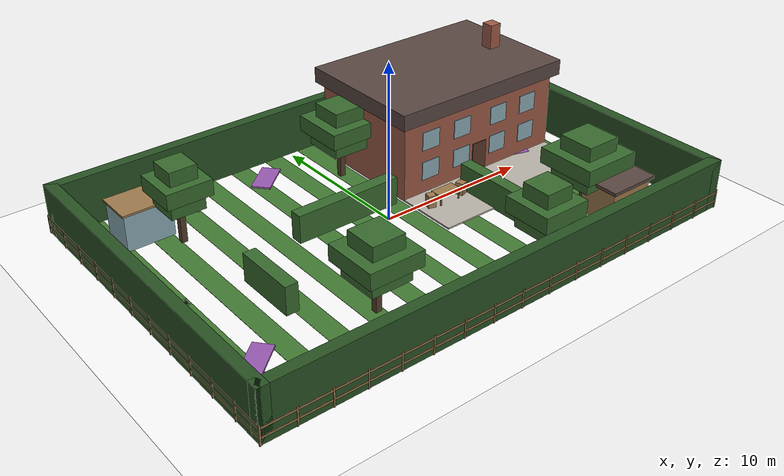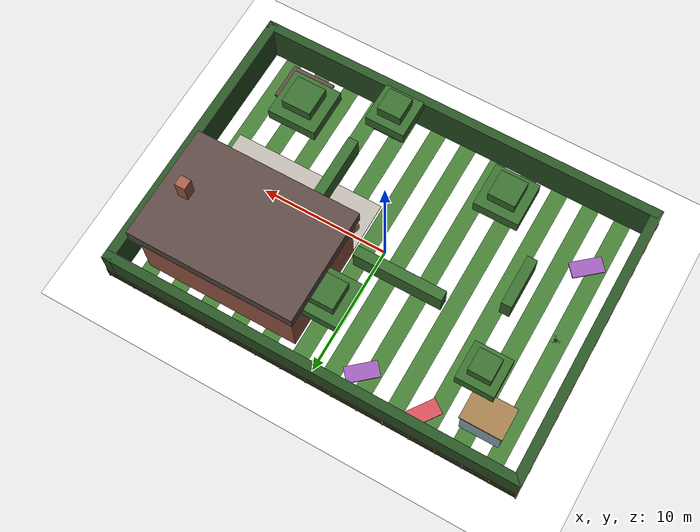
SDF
<sdf version="1.9">
 <world name="garden">
  <physics name="2ms" type="ignore">
   <max_step_size>0.002</max_step_size>
   <real_time_factor>1.0</real_time_factor>
   <dart><collision_detector>bullet</collision_detector></dart>
  </physics>
  <plugin filename="gz-sim-physics-system" name="gz::sim::systems::Physics"/>
  <plugin filename="gz-sim-user-commands-system" name="gz::sim::systems::UserCommands"/>
  <plugin filename="gz-sim-scene-broadcaster-system" name="gz::sim::systems::SceneBroadcaster"/>
  <plugin filename="gz-sim-imu-system" name="gz::sim::systems::Imu"/>
  <plugin filename="gz-sim-navsat-system" name="gz::sim::systems::NavSat"/>
  <plugin filename="gz-sim-sensors-system" name="gz::sim::systems::Sensors">
   <render_engine>ogre2</render_engine>
  </plugin>
  <gravity>0 0 -9.8066</gravity>
  <magnetic_field>2.0554e-05 0.0 4.5e-05</magnetic_field>
  <spherical_coordinates>
   <surface_model>EARTH_WGS84</surface_model>
   <world_frame_orientation>ENU</world_frame_orientation>
   <latitude_deg>49.8397</latitude_deg>
   <longitude_deg>24.0297</longitude_deg>
   <elevation>296.0</elevation>
   <heading_deg>0</heading_deg>
  </spherical_coordinates>
  <scene>
   <ambient>0.55 0.55 0.52 1</ambient>
   <background>0.55 0.68 0.85 1</background>
   <shadows>false</shadows>
   <grid>false</grid>
  </scene>
  <light name="sun" type="directional">
   <pose>0 0 12 0 0 0</pose>
   <direction>-0.4 0.3 -0.9</direction>
   <diffuse>0.9 0.88 0.82 1</diffuse>
   <specular>0.2 0.2 0.2 1</specular>
   <cast_shadows>false</cast_shadows>
  </light>
  <model name="ground_plane">
   <static>true</static>
   <link name="link">
    <collision name="collision">
     <geometry><plane><normal>0 0 1</normal><size>200 200</size></plane></geometry>
     <surface><friction><ode><mu>1.0</mu><mu2>1.0</mu2></ode></friction></surface>
    </collision>
    <visual name="visual">
     <geometry><plane><normal>0 0 1</normal><size>200 200</size></plane></geometry>
     <material>
      <ambient>0.5 0.5 0.5 1</ambient>
      <diffuse>1 1 1 1</diffuse>
      <pbr>
       <metal>
        <albedo_map>model://surfaces/materials/textures/grass.png</albedo_map>
        <metalness>0</metalness>
        <roughness>0.9</roughness>
       </metal>
      </pbr>
     </material>
    </visual>
   </link>
  </model>
  <model name="boundary">
   <static>true</static>
   <link name="link">
    <visual name="hedge_north_v">
     <pose>0 10.65 1.6 0 0 0</pose>
     <geometry><box><size>32 0.7 3.2</size></box></geometry>
     <material><ambient>0.08 0.16 0.07 1</ambient><diffuse>0.16 0.32 0.14 1</diffuse></material>
    </visual>
    <collision name="hedge_north_c">
     <pose>0 10.65 1.6 0 0 0</pose>
     <geometry><box><size>32 0.7 3.2</size></box></geometry>
    </collision>
    <visual name="hedge_south_v">
     <pose>0 -10.65 1.6 0 0 0</pose>
     <geometry><box><size>32 0.7 3.2</size></box></geometry>
     <material><ambient>0.08 0.16 0.07 1</ambient><diffuse>0.16 0.32 0.14 1</diffuse></material>
    </visual>
    <collision name="hedge_south_c">
     <pose>0 -10.65 1.6 0 0 0</pose>
     <geometry><box><size>32 0.7 3.2</size></box></geometry>
    </collision>
    <visual name="hedge_east_v">
     <pose>15.65 0 1.6 0 0 0</pose>
     <geometry><box><size>0.7 22 3.2</size></box></geometry>
     <material><ambient>0.08 0.16 0.07 1</ambient><diffuse>0.16 0.32 0.14 1</diffuse></material>
    </visual>
    <collision name="hedge_east_c">
     <pose>15.65 0 1.6 0 0 0</pose>
     <geometry><box><size>0.7 22 3.2</size></box></geometry>
    </collision>
    <visual name="hedge_west_v">
     <pose>-15.65 0 1.6 0 0 0</pose>
     <geometry><box><size>0.7 22 3.2</size></box></geometry>
     <material><ambient>0.08 0.16 0.07 1</ambient><diffuse>0.16 0.32 0.14 1</diffuse></material>
    </visual>
    <collision name="hedge_west_c">
     <pose>-15.65 0 1.6 0 0 0</pose>
     <geometry><box><size>0.7 22 3.2</size></box></geometry>
    </collision>
    <visual name="post_x0_s_v">
     <pose>-16 -11 0.6 0 0 0</pose>
     <geometry><box><size>0.09 0.09 1.2</size></box></geometry>
     <material><ambient>0.31 0.24 0.15 1</ambient><diffuse>0.62 0.48 0.3 1</diffuse></material>
    </visual>
    <collision name="post_x0_s_c">
     <pose>-16 -11 0.6 0 0 0</pose>
     <geometry><box><size>0.09 0.09 1.2</size></box></geometry>
    </collision>
    <visual name="post_x0_n_v">
     <pose>-16 11 0.6 0 0 0</pose>
     <geometry><box><size>0.09 0.09 1.2</size></box></geometry>
     <material><ambient>0.31 0.24 0.15 1</ambient><diffuse>0.62 0.48 0.3 1</diffuse></material>
    </visual>
    <collision name="post_x0_n_c">
     <pose>-16 11 0.6 0 0 0</pose>
     <geometry><box><size>0.09 0.09 1.2</size></box></geometry>
    </collision>
    <visual name="post_x1_s_v">
     <pose>-14 -11 0.6 0 0 0</pose>
     <geometry><box><size>0.09 0.09 1.2</size></box></geometry>
     <material><ambient>0.31 0.24 0.15 1</ambient><diffuse>0.62 0.48 0.3 1</diffuse></material>
    </visual>
    <collision name="post_x1_s_c">
     <pose>-14 -11 0.6 0 0 0</pose>
     <geometry><box><size>0.09 0.09 1.2</size></box></geometry>
    </collision>
    <visual name="post_x1_n_v">
     <pose>-14 11 0.6 0 0 0</pose>
     <geometry><box><size>0.09 0.09 1.2</size></box></geometry>
     <material><ambient>0.31 0.24 0.15 1</ambient><diffuse>0.62 0.48 0.3 1</diffuse></material>
    </visual>
    <collision name="post_x1_n_c">
     <pose>-14 11 0.6 0 0 0</pose>
     <geometry><box><size>0.09 0.09 1.2</size></box></geometry>
    </collision>
    <visual name="post_x2_s_v">
     <pose>-12 -11 0.6 0 0 0</pose>
     <geometry><box><size>0.09 0.09 1.2</size></box></geometry>
     <material><ambient>0.31 0.24 0.15 1</ambient><diffuse>0.62 0.48 0.3 1</diffuse></material>
    </visual>
    <collision name="post_x2_s_c">
     <pose>-12 -11 0.6 0 0 0</pose>
     <geometry><box><size>0.09 0.09 1.2</size></box></geometry>
    </collision>
    <visual name="post_x2_n_v">
     <pose>-12 11 0.6 0 0 0</pose>
     <geometry><box><size>0.09 0.09 1.2</size></box></geometry>
     <material><ambient>0.31 0.24 0.15 1</ambient><diffuse>0.62 0.48 0.3 1</diffuse></material>
    </visual>
    <collision name="post_x2_n_c">
     <pose>-12 11 0.6 0 0 0</pose>
     <geometry><box><size>0.09 0.09 1.2</size></box></geometry>
    </collision>
    <visual name="post_x3_s_v">
     <pose>-10 -11 0.6 0 0 0</pose>
     <geometry><box><size>0.09 0.09 1.2</size></box></geometry>
     <material><ambient>0.31 0.24 0.15 1</ambient><diffuse>0.62 0.48 0.3 1</diffuse></material>
    </visual>
    <collision name="post_x3_s_c">
     <pose>-10 -11 0.6 0 0 0</pose>
     <geometry><box><size>0.09 0.09 1.2</size></box></geometry>
    </collision>
    <visual name="post_x3_n_v">
     <pose>-10 11 0.6 0 0 0</pose>
     <geometry><box><size>0.09 0.09 1.2</size></box></geometry>
     <material><ambient>0.31 0.24 0.15 1</ambient><diffuse>0.62 0.48 0.3 1</diffuse></material>
    </visual>
    <collision name="post_x3_n_c">
     <pose>-10 11 0.6 0 0 0</pose>
     <geometry><box><size>0.09 0.09 1.2</size></box></geometry>
    </collision>
    <visual name="post_x4_s_v">
     <pose>-8 -11 0.6 0 0 0</pose>
     <geometry><box><size>0.09 0.09 1.2</size></box></geometry>
     <material><ambient>0.31 0.24 0.15 1</ambient><diffuse>0.62 0.48 0.3 1</diffuse></material>
    </visual>
    <collision name="post_x4_s_c">
     <pose>-8 -11 0.6 0 0 0</pose>
     <geometry><box><size>0.09 0.09 1.2</size></box></geometry>
    </collision>
    <visual name="post_x4_n_v">
     <pose>-8 11 0.6 0 0 0</pose>
     <geometry><box><size>0.09 0.09 1.2</size></box></geometry>
     <material><ambient>0.31 0.24 0.15 1</ambient><diffuse>0.62 0.48 0.3 1</diffuse></material>
    </visual>
    <collision name="post_x4_n_c">
     <pose>-8 11 0.6 0 0 0</pose>
     <geometry><box><size>0.09 0.09 1.2</size></box></geometry>
    </collision>
    <visual name="post_x5_s_v">
     <pose>-6 -11 0.6 0 0 0</pose>
     <geometry><box><size>0.09 0.09 1.2</size></box></geometry>
     <material><ambient>0.31 0.24 0.15 1</ambient><diffuse>0.62 0.48 0.3 1</diffuse></material>
    </visual>
    <collision name="post_x5_s_c">
     <pose>-6 -11 0.6 0 0 0</pose>
     <geometry><box><size>0.09 0.09 1.2</size></box></geometry>
    </collision>
    <visual name="post_x5_n_v">
     <pose>-6 11 0.6 0 0 0</pose>
     <geometry><box><size>0.09 0.09 1.2</size></box></geometry>
     <material><ambient>0.31 0.24 0.15 1</ambient><diffuse>0.62 0.48 0.3 1</diffuse></material>
    </visual>
    <collision name="post_x5_n_c">
     <pose>-6 11 0.6 0 0 0</pose>
     <geometry><box><size>0.09 0.09 1.2</size></box></geometry>
    </collision>
    <visual name="post_x6_s_v">
     <pose>-4 -11 0.6 0 0 0</pose>
     <geometry><box><size>0.09 0.09 1.2</size></box></geometry>
     <material><ambient>0.31 0.24 0.15 1</ambient><diffuse>0.62 0.48 0.3 1</diffuse></material>
    </visual>
    <collision name="post_x6_s_c">
     <pose>-4 -11 0.6 0 0 0</pose>
     <geometry><box><size>0.09 0.09 1.2</size></box></geometry>
    </collision>
    <visual name="post_x6_n_v">
     <pose>-4 11 0.6 0 0 0</pose>
     <geometry><box><size>0.09 0.09 1.2</size></box></geometry>
     <material><ambient>0.31 0.24 0.15 1</ambient><diffuse>0.62 0.48 0.3 1</diffuse></material>
    </visual>
    <collision name="post_x6_n_c">
     <pose>-4 11 0.6 0 0 0</pose>
     <geometry><box><size>0.09 0.09 1.2</size></box></geometry>
    </collision>
    <visual name="post_x7_s_v">
     <pose>-2 -11 0.6 0 0 0</pose>
     <geometry><box><size>0.09 0.09 1.2</size></box></geometry>
     <material><ambient>0.31 0.24 0.15 1</ambient><diffuse>0.62 0.48 0.3 1</diffuse></material>
    </visual>
    <collision name="post_x7_s_c">
     <pose>-2 -11 0.6 0 0 0</pose>
     <geometry><box><size>0.09 0.09 1.2</size></box></geometry>
    </collision>
    <visual name="post_x7_n_v">
     <pose>-2 11 0.6 0 0 0</pose>
     <geometry><box><size>0.09 0.09 1.2</size></box></geometry>
     <material><ambient>0.31 0.24 0.15 1</ambient><diffuse>0.62 0.48 0.3 1</diffuse></material>
    </visual>
    <collision name="post_x7_n_c">
     <pose>-2 11 0.6 0 0 0</pose>
     <geometry><box><size>0.09 0.09 1.2</size></box></geometry>
    </collision>
    <visual name="post_x8_s_v">
     <pose>0 -11 0.6 0 0 0</pose>
     <geometry><box><size>0.09 0.09 1.2</size></box></geometry>
     <material><ambient>0.31 0.24 0.15 1</ambient><diffuse>0.62 0.48 0.3 1</diffuse></material>
    </visual>
    <collision name="post_x8_s_c">
     <pose>0 -11 0.6 0 0 0</pose>
     <geometry><box><size>0.09 0.09 1.2</size></box></geometry>
    </collision>
    <visual name="post_x8_n_v">
     <pose>0 11 0.6 0 0 0</pose>
     <geometry><box><size>0.09 0.09 1.2</size></box></geometry>
     <material><ambient>0.31 0.24 0.15 1</ambient><diffuse>0.62 0.48 0.3 1</diffuse></material>
    </visual>
    <collision name="post_x8_n_c">
     <pose>0 11 0.6 0 0 0</pose>
     <geometry><box><size>0.09 0.09 1.2</size></box></geometry>
    </collision>
    <visual name="post_x9_s_v">
     <pose>2 -11 0.6 0 0 0</pose>
     <geometry><box><size>0.09 0.09 1.2</size></box></geometry>
     <material><ambient>0.31 0.24 0.15 1</ambient><diffuse>0.62 0.48 0.3 1</diffuse></material>
    </visual>
    <collision name="post_x9_s_c">
     <pose>2 -11 0.6 0 0 0</pose>
     <geometry><box><size>0.09 0.09 1.2</size></box></geometry>
    </collision>
    <visual name="post_x9_n_v">
     <pose>2 11 0.6 0 0 0</pose>
     <geometry><box><size>0.09 0.09 1.2</size></box></geometry>
     <material><ambient>0.31 0.24 0.15 1</ambient><diffuse>0.62 0.48 0.3 1</diffuse></material>
    </visual>
    <collision name="post_x9_n_c">
     <pose>2 11 0.6 0 0 0</pose>
     <geometry><box><size>0.09 0.09 1.2</size></box></geometry>
    </collision>
    <visual name="post_x10_s_v">
     <pose>4 -11 0.6 0 0 0</pose>
     <geometry><box><size>0.09 0.09 1.2</size></box></geometry>
     <material><ambient>0.31 0.24 0.15 1</ambient><diffuse>0.62 0.48 0.3 1</diffuse></material>
    </visual>
    <collision name="post_x10_s_c">
     <pose>4 -11 0.6 0 0 0</pose>
     <geometry><box><size>0.09 0.09 1.2</size></box></geometry>
    </collision>
    <visual name="post_x10_n_v">
     <pose>4 11 0.6 0 0 0</pose>
     <geometry><box><size>0.09 0.09 1.2</size></box></geometry>
     <material><ambient>0.31 0.24 0.15 1</ambient><diffuse>0.62 0.48 0.3 1</diffuse></material>
    </visual>
    <collision name="post_x10_n_c">
     <pose>4 11 0.6 0 0 0</pose>
     <geometry><box><size>0.09 0.09 1.2</size></box></geometry>
    </collision>
    <visual name="post_x11_s_v">
     <pose>6 -11 0.6 0 0 0</pose>
     <geometry><box><size>0.09 0.09 1.2</size></box></geometry>
     <material><ambient>0.31 0.24 0.15 1</ambient><diffuse>0.62 0.48 0.3 1</diffuse></material>
    </visual>
    <collision name="post_x11_s_c">
     <pose>6 -11 0.6 0 0 0</pose>
     <geometry><box><size>0.09 0.09 1.2</size></box></geometry>
    </collision>
    <visual name="post_x11_n_v">
     <pose>6 11 0.6 0 0 0</pose>
     <geometry><box><size>0.09 0.09 1.2</size></box></geometry>
     <material><ambient>0.31 0.24 0.15 1</ambient><diffuse>0.62 0.48 0.3 1</diffuse></material>
    </visual>
    <collision name="post_x11_n_c">
     <pose>6 11 0.6 0 0 0</pose>
     <geometry><box><size>0.09 0.09 1.2</size></box></geometry>
    </collision>
    <visual name="post_x12_s_v">
     <pose>8 -11 0.6 0 0 0</pose>
     <geometry><box><size>0.09 0.09 1.2</size></box></geometry>
     <material><ambient>0.31 0.24 0.15 1</ambient><diffuse>0.62 0.48 0.3 1</diffuse></material>
    </visual>
    <collision name="post_x12_s_c">
     <pose>8 -11 0.6 0 0 0</pose>
     <geometry><box><size>0.09 0.09 1.2</size></box></geometry>
    </collision>
    <visual name="post_x12_n_v">
     <pose>8 11 0.6 0 0 0</pose>
     <geometry><box><size>0.09 0.09 1.2</size></box></geometry>
     <material><ambient>0.31 0.24 0.15 1</ambient><diffuse>0.62 0.48 0.3 1</diffuse></material>
    </visual>
    <collision name="post_x12_n_c">
     <pose>8 11 0.6 0 0 0</pose>
     <geometry><box><size>0.09 0.09 1.2</size></box></geometry>
    </collision>
    <visual name="post_x13_s_v">
     <pose>10 -11 0.6 0 0 0</pose>
     <geometry><box><size>0.09 0.09 1.2</size></box></geometry>
     <material><ambient>0.31 0.24 0.15 1</ambient><diffuse>0.62 0.48 0.3 1</diffuse></material>
    </visual>
    <collision name="post_x13_s_c">
     <pose>10 -11 0.6 0 0 0</pose>
     <geometry><box><size>0.09 0.09 1.2</size></box></geometry>
    </collision>
    <visual name="post_x13_n_v">
     <pose>10 11 0.6 0 0 0</pose>
     <geometry><box><size>0.09 0.09 1.2</size></box></geometry>
     <material><ambient>0.31 0.24 0.15 1</ambient><diffuse>0.62 0.48 0.3 1</diffuse></material>
    </visual>
    <collision name="post_x13_n_c">
     <pose>10 11 0.6 0 0 0</pose>
     <geometry><box><size>0.09 0.09 1.2</size></box></geometry>
    </collision>
    <visual name="post_x14_s_v">
     <pose>12 -11 0.6 0 0 0</pose>
     <geometry><box><size>0.09 0.09 1.2</size></box></geometry>
     <material><ambient>0.31 0.24 0.15 1</ambient><diffuse>0.62 0.48 0.3 1</diffuse></material>
    </visual>
    <collision name="post_x14_s_c">
     <pose>12 -11 0.6 0 0 0</pose>
     <geometry><box><size>0.09 0.09 1.2</size></box></geometry>
    </collision>
    <visual name="post_x14_n_v">
     <pose>12 11 0.6 0 0 0</pose>
     <geometry><box><size>0.09 0.09 1.2</size></box></geometry>
     <material><ambient>0.31 0.24 0.15 1</ambient><diffuse>0.62 0.48 0.3 1</diffuse></material>
    </visual>
    <collision name="post_x14_n_c">
     <pose>12 11 0.6 0 0 0</pose>
     <geometry><box><size>0.09 0.09 1.2</size></box></geometry>
    </collision>
    <visual name="post_x15_s_v">
     <pose>14 -11 0.6 0 0 0</pose>
     <geometry><box><size>0.09 0.09 1.2</size></box></geometry>
     <material><ambient>0.31 0.24 0.15 1</ambient><diffuse>0.62 0.48 0.3 1</diffuse></material>
    </visual>
    <collision name="post_x15_s_c">
     <pose>14 -11 0.6 0 0 0</pose>
     <geometry><box><size>0.09 0.09 1.2</size></box></geometry>
    </collision>
    <visual name="post_x15_n_v">
     <pose>14 11 0.6 0 0 0</pose>
     <geometry><box><size>0.09 0.09 1.2</size></box></geometry>
     <material><ambient>0.31 0.24 0.15 1</ambient><diffuse>0.62 0.48 0.3 1</diffuse></material>
    </visual>
    <collision name="post_x15_n_c">
     <pose>14 11 0.6 0 0 0</pose>
     <geometry><box><size>0.09 0.09 1.2</size></box></geometry>
    </collision>
    <visual name="post_x16_s_v">
     <pose>16 -11 0.6 0 0 0</pose>
     <geometry><box><size>0.09 0.09 1.2</size></box></geometry>
     <material><ambient>0.31 0.24 0.15 1</ambient><diffuse>0.62 0.48 0.3 1</diffuse></material>
    </visual>
    <collision name="post_x16_s_c">
     <pose>16 -11 0.6 0 0 0</pose>
     <geometry><box><size>0.09 0.09 1.2</size></box></geometry>
    </collision>
    <visual name="post_x16_n_v">
     <pose>16 11 0.6 0 0 0</pose>
     <geometry><box><size>0.09 0.09 1.2</size></box></geometry>
     <material><ambient>0.31 0.24 0.15 1</ambient><diffuse>0.62 0.48 0.3 1</diffuse></material>
    </visual>
    <collision name="post_x16_n_c">
     <pose>16 11 0.6 0 0 0</pose>
     <geometry><box><size>0.09 0.09 1.2</size></box></geometry>
    </collision>
    <visual name="post_y0_w_v">
     <pose>-16 -11 0.6 0 0 0</pose>
     <geometry><box><size>0.09 0.09 1.2</size></box></geometry>
     <material><ambient>0.31 0.24 0.15 1</ambient><diffuse>0.62 0.48 0.3 1</diffuse></material>
    </visual>
    <collision name="post_y0_w_c">
     <pose>-16 -11 0.6 0 0 0</pose>
     <geometry><box><size>0.09 0.09 1.2</size></box></geometry>
    </collision>
    <visual name="post_y0_e_v">
     <pose>16 -11 0.6 0 0 0</pose>
     <geometry><box><size>0.09 0.09 1.2</size></box></geometry>
     <material><ambient>0.31 0.24 0.15 1</ambient><diffuse>0.62 0.48 0.3 1</diffuse></material>
    </visual>
    <collision name="post_y0_e_c">
     <pose>16 -11 0.6 0 0 0</pose>
     <geometry><box><size>0.09 0.09 1.2</size></box></geometry>
    </collision>
    <visual name="post_y1_w_v">
     <pose>-16 -9 0.6 0 0 0</pose>
     <geometry><box><size>0.09 0.09 1.2</size></box></geometry>
     <material><ambient>0.31 0.24 0.15 1</ambient><diffuse>0.62 0.48 0.3 1</diffuse></material>
    </visual>
    <collision name="post_y1_w_c">
     <pose>-16 -9 0.6 0 0 0</pose>
     <geometry><box><size>0.09 0.09 1.2</size></box></geometry>
    </collision>
    <visual name="post_y1_e_v">
     <pose>16 -9 0.6 0 0 0</pose>
     <geometry><box><size>0.09 0.09 1.2</size></box></geometry>
     <material><ambient>0.31 0.24 0.15 1</ambient><diffuse>0.62 0.48 0.3 1</diffuse></material>
    </visual>
    <collision name="post_y1_e_c">
     <pose>16 -9 0.6 0 0 0</pose>
     <geometry><box><size>0.09 0.09 1.2</size></box></geometry>
    </collision>
    <visual name="post_y2_w_v">
     <pose>-16 -7 0.6 0 0 0</pose>
     <geometry><box><size>0.09 0.09 1.2</size></box></geometry>
     <material><ambient>0.31 0.24 0.15 1</ambient><diffuse>0.62 0.48 0.3 1</diffuse></material>
    </visual>
    <collision name="post_y2_w_c">
     <pose>-16 -7 0.6 0 0 0</pose>
     <geometry><box><size>0.09 0.09 1.2</size></box></geometry>
    </collision>
    <visual name="post_y2_e_v">
     <pose>16 -7 0.6 0 0 0</pose>
     <geometry><box><size>0.09 0.09 1.2</size></box></geometry>
     <material><ambient>0.31 0.24 0.15 1</ambient><diffuse>0.62 0.48 0.3 1</diffuse></material>
    </visual>
    <collision name="post_y2_e_c">
     <pose>16 -7 0.6 0 0 0</pose>
     <geometry><box><size>0.09 0.09 1.2</size></box></geometry>
    </collision>
    <visual name="post_y3_w_v">
     <pose>-16 -5 0.6 0 0 0</pose>
     <geometry><box><size>0.09 0.09 1.2</size></box></geometry>
     <material><ambient>0.31 0.24 0.15 1</ambient><diffuse>0.62 0.48 0.3 1</diffuse></material>
    </visual>
    <collision name="post_y3_w_c">
     <pose>-16 -5 0.6 0 0 0</pose>
     <geometry><box><size>0.09 0.09 1.2</size></box></geometry>
    </collision>
    <visual name="post_y3_e_v">
     <pose>16 -5 0.6 0 0 0</pose>
     <geometry><box><size>0.09 0.09 1.2</size></box></geometry>
     <material><ambient>0.31 0.24 0.15 1</ambient><diffuse>0.62 0.48 0.3 1</diffuse></material>
    </visual>
    <collision name="post_y3_e_c">
     <pose>16 -5 0.6 0 0 0</pose>
     <geometry><box><size>0.09 0.09 1.2</size></box></geometry>
    </collision>
    <visual name="post_y4_w_v">
     <pose>-16 -3 0.6 0 0 0</pose>
     <geometry><box><size>0.09 0.09 1.2</size></box></geometry>
     <material><ambient>0.31 0.24 0.15 1</ambient><diffuse>0.62 0.48 0.3 1</diffuse></material>
    </visual>
    <collision name="post_y4_w_c">
     <pose>-16 -3 0.6 0 0 0</pose>
     <geometry><box><size>0.09 0.09 1.2</size></box></geometry>
    </collision>
    <visual name="post_y4_e_v">
     <pose>16 -3 0.6 0 0 0</pose>
     <geometry><box><size>0.09 0.09 1.2</size></box></geometry>
     <material><ambient>0.31 0.24 0.15 1</ambient><diffuse>0.62 0.48 0.3 1</diffuse></material>
    </visual>
    <collision name="post_y4_e_c">
     <pose>16 -3 0.6 0 0 0</pose>
     <geometry><box><size>0.09 0.09 1.2</size></box></geometry>
    </collision>
    <visual name="post_y5_w_v">
     <pose>-16 -1 0.6 0 0 0</pose>
     <geometry><box><size>0.09 0.09 1.2</size></box></geometry>
     <material><ambient>0.31 0.24 0.15 1</ambient><diffuse>0.62 0.48 0.3 1</diffuse></material>
    </visual>
    <collision name="post_y5_w_c">
     <pose>-16 -1 0.6 0 0 0</pose>
     <geometry><box><size>0.09 0.09 1.2</size></box></geometry>
    </collision>
    <visual name="post_y5_e_v">
     <pose>16 -1 0.6 0 0 0</pose>
     <geometry><box><size>0.09 0.09 1.2</size></box></geometry>
     <material><ambient>0.31 0.24 0.15 1</ambient><diffuse>0.62 0.48 0.3 1</diffuse></material>
    </visual>
    <collision name="post_y5_e_c">
     <pose>16 -1 0.6 0 0 0</pose>
     <geometry><box><size>0.09 0.09 1.2</size></box></geometry>
    </collision>
    <visual name="post_y6_w_v">
     <pose>-16 1 0.6 0 0 0</pose>
     <geometry><box><size>0.09 0.09 1.2</size></box></geometry>
     <material><ambient>0.31 0.24 0.15 1</ambient><diffuse>0.62 0.48 0.3 1</diffuse></material>
    </visual>
    <collision name="post_y6_w_c">
     <pose>-16 1 0.6 0 0 0</pose>
     <geometry><box><size>0.09 0.09 1.2</size></box></geometry>
    </collision>
    <visual name="post_y6_e_v">
     <pose>16 1 0.6 0 0 0</pose>
     <geometry><box><size>0.09 0.09 1.2</size></box></geometry>
     <material><ambient>0.31 0.24 0.15 1</ambient><diffuse>0.62 0.48 0.3 1</diffuse></material>
    </visual>
    <collision name="post_y6_e_c">
     <pose>16 1 0.6 0 0 0</pose>
     <geometry><box><size>0.09 0.09 1.2</size></box></geometry>
    </collision>
    <visual name="post_y7_w_v">
     <pose>-16 3 0.6 0 0 0</pose>
     <geometry><box><size>0.09 0.09 1.2</size></box></geometry>
     <material><ambient>0.31 0.24 0.15 1</ambient><diffuse>0.62 0.48 0.3 1</diffuse></material>
    </visual>
    <collision name="post_y7_w_c">
     <pose>-16 3 0.6 0 0 0</pose>
     <geometry><box><size>0.09 0.09 1.2</size></box></geometry>
    </collision>
    <visual name="post_y7_e_v">
     <pose>16 3 0.6 0 0 0</pose>
     <geometry><box><size>0.09 0.09 1.2</size></box></geometry>
     <material><ambient>0.31 0.24 0.15 1</ambient><diffuse>0.62 0.48 0.3 1</diffuse></material>
    </visual>
    <collision name="post_y7_e_c">
     <pose>16 3 0.6 0 0 0</pose>
     <geometry><box><size>0.09 0.09 1.2</size></box></geometry>
    </collision>
    <visual name="post_y8_w_v">
     <pose>-16 5 0.6 0 0 0</pose>
     <geometry><box><size>0.09 0.09 1.2</size></box></geometry>
     <material><ambient>0.31 0.24 0.15 1</ambient><diffuse>0.62 0.48 0.3 1</diffuse></material>
    </visual>
    <collision name="post_y8_w_c">
     <pose>-16 5 0.6 0 0 0</pose>
     <geometry><box><size>0.09 0.09 1.2</size></box></geometry>
    </collision>
    <visual name="post_y8_e_v">
     <pose>16 5 0.6 0 0 0</pose>
     <geometry><box><size>0.09 0.09 1.2</size></box></geometry>
     <material><ambient>0.31 0.24 0.15 1</ambient><diffuse>0.62 0.48 0.3 1</diffuse></material>
    </visual>
    <collision name="post_y8_e_c">
     <pose>16 5 0.6 0 0 0</pose>
     <geometry><box><size>0.09 0.09 1.2</size></box></geometry>
    </collision>
    <visual name="post_y9_w_v">
     <pose>-16 7 0.6 0 0 0</pose>
     <geometry><box><size>0.09 0.09 1.2</size></box></geometry>
     <material><ambient>0.31 0.24 0.15 1</ambient><diffuse>0.62 0.48 0.3 1</diffuse></material>
    </visual>
    <collision name="post_y9_w_c">
     <pose>-16 7 0.6 0 0 0</pose>
     <geometry><box><size>0.09 0.09 1.2</size></box></geometry>
    </collision>
    <visual name="post_y9_e_v">
     <pose>16 7 0.6 0 0 0</pose>
     <geometry><box><size>0.09 0.09 1.2</size></box></geometry>
     <material><ambient>0.31 0.24 0.15 1</ambient><diffuse>0.62 0.48 0.3 1</diffuse></material>
    </visual>
    <collision name="post_y9_e_c">
     <pose>16 7 0.6 0 0 0</pose>
     <geometry><box><size>0.09 0.09 1.2</size></box></geometry>
    </collision>
    <visual name="post_y10_w_v">
     <pose>-16 9 0.6 0 0 0</pose>
     <geometry><box><size>0.09 0.09 1.2</size></box></geometry>
     <material><ambient>0.31 0.24 0.15 1</ambient><diffuse>0.62 0.48 0.3 1</diffuse></material>
    </visual>
    <collision name="post_y10_w_c">
     <pose>-16 9 0.6 0 0 0</pose>
     <geometry><box><size>0.09 0.09 1.2</size></box></geometry>
    </collision>
    <visual name="post_y10_e_v">
     <pose>16 9 0.6 0 0 0</pose>
     <geometry><box><size>0.09 0.09 1.2</size></box></geometry>
     <material><ambient>0.31 0.24 0.15 1</ambient><diffuse>0.62 0.48 0.3 1</diffuse></material>
    </visual>
    <collision name="post_y10_e_c">
     <pose>16 9 0.6 0 0 0</pose>
     <geometry><box><size>0.09 0.09 1.2</size></box></geometry>
    </collision>
    <visual name="post_y11_w_v">
     <pose>-16 11 0.6 0 0 0</pose>
     <geometry><box><size>0.09 0.09 1.2</size></box></geometry>
     <material><ambient>0.31 0.24 0.15 1</ambient><diffuse>0.62 0.48 0.3 1</diffuse></material>
    </visual>
    <collision name="post_y11_w_c">
     <pose>-16 11 0.6 0 0 0</pose>
     <geometry><box><size>0.09 0.09 1.2</size></box></geometry>
    </collision>
    <visual name="post_y11_e_v">
     <pose>16 11 0.6 0 0 0</pose>
     <geometry><box><size>0.09 0.09 1.2</size></box></geometry>
     <material><ambient>0.31 0.24 0.15 1</ambient><diffuse>0.62 0.48 0.3 1</diffuse></material>
    </visual>
    <collision name="post_y11_e_c">
     <pose>16 11 0.6 0 0 0</pose>
     <geometry><box><size>0.09 0.09 1.2</size></box></geometry>
    </collision>
    <visual name="rail_x0_s_v">
     <pose>0 -11 0.45 0 0 0</pose>
     <geometry><box><size>32 0.06 0.12</size></box></geometry>
     <material><ambient>0.31 0.24 0.15 1</ambient><diffuse>0.62 0.48 0.3 1</diffuse></material>
    </visual>
    <visual name="rail_x0_n_v">
     <pose>0 11 0.45 0 0 0</pose>
     <geometry><box><size>32 0.06 0.12</size></box></geometry>
     <material><ambient>0.31 0.24 0.15 1</ambient><diffuse>0.62 0.48 0.3 1</diffuse></material>
    </visual>
    <visual name="rail_y0_w_v">
     <pose>-16 0 0.45 0 0 0</pose>
     <geometry><box><size>0.06 22 0.12</size></box></geometry>
     <material><ambient>0.31 0.24 0.15 1</ambient><diffuse>0.62 0.48 0.3 1</diffuse></material>
    </visual>
    <visual name="rail_y0_e_v">
     <pose>16 0 0.45 0 0 0</pose>
     <geometry><box><size>0.06 22 0.12</size></box></geometry>
     <material><ambient>0.31 0.24 0.15 1</ambient><diffuse>0.62 0.48 0.3 1</diffuse></material>
    </visual>
    <visual name="rail_x1_s_v">
     <pose>0 -11 1 0 0 0</pose>
     <geometry><box><size>32 0.06 0.12</size></box></geometry>
     <material><ambient>0.31 0.24 0.15 1</ambient><diffuse>0.62 0.48 0.3 1</diffuse></material>
    </visual>
    <visual name="rail_x1_n_v">
     <pose>0 11 1 0 0 0</pose>
     <geometry><box><size>32 0.06 0.12</size></box></geometry>
     <material><ambient>0.31 0.24 0.15 1</ambient><diffuse>0.62 0.48 0.3 1</diffuse></material>
    </visual>
    <visual name="rail_y1_w_v">
     <pose>-16 0 1 0 0 0</pose>
     <geometry><box><size>0.06 22 0.12</size></box></geometry>
     <material><ambient>0.31 0.24 0.15 1</ambient><diffuse>0.62 0.48 0.3 1</diffuse></material>
    </visual>
    <visual name="rail_y1_e_v">
     <pose>16 0 1 0 0 0</pose>
     <geometry><box><size>0.06 22 0.12</size></box></geometry>
     <material><ambient>0.31 0.24 0.15 1</ambient><diffuse>0.62 0.48 0.3 1</diffuse></material>
    </visual>
   </link>
  </model>
  <model name="house">
   <static>true</static>
   <pose>8 5 0 0 0 0</pose>
   <link name="link">
    <visual name="walls_v">
     <pose>0 0 2.5 0 0 0</pose>
     <geometry><box><size>12 8 5</size></box></geometry>
     <material><ambient>0.31 0.18 0.14 1</ambient><diffuse>0.62 0.36 0.28 1</diffuse></material>
    </visual>
    <collision name="walls_c">
     <pose>0 0 2.5 0 0 0</pose>
     <geometry><box><size>12 8 5</size></box></geometry>
    </collision>
    <visual name="roof_v">
     <pose>0 0 5.5 0 0 0</pose>
     <geometry><box><size>12.8 8.8 1</size></box></geometry>
     <material><ambient>0.175 0.14 0.13 1</ambient><diffuse>0.35 0.28 0.26 1</diffuse></material>
    </visual>
    <collision name="roof_c">
     <pose>0 0 5.5 0 0 0</pose>
     <geometry><box><size>12.8 8.8 1</size></box></geometry>
    </collision>
    <visual name="chimney_v">
     <pose>4.5 0 6.8 0 0 0</pose>
     <geometry><box><size>0.8 0.8 1.6</size></box></geometry>
     <material><ambient>0.31 0.18 0.14 1</ambient><diffuse>0.62 0.36 0.28 1</diffuse></material>
    </visual>
    <collision name="chimney_c">
     <pose>4.5 0 6.8 0 0 0</pose>
     <geometry><box><size>0.8 0.8 1.6</size></box></geometry>
    </collision>
    <visual name="window_0_0_v">
     <pose>-4 -4.02 1.6 0 0 0</pose>
     <geometry><box><size>1.3 0.06 1.2</size></box></geometry>
     <material><ambient>0.275 0.34 0.36 1</ambient><diffuse>0.55 0.68 0.72 1</diffuse></material>
    </visual>
    <visual name="window_0_1_v">
     <pose>-4 -4.02 3.6 0 0 0</pose>
     <geometry><box><size>1.3 0.06 1.2</size></box></geometry>
     <material><ambient>0.275 0.34 0.36 1</ambient><diffuse>0.55 0.68 0.72 1</diffuse></material>
    </visual>
    <visual name="window_1_0_v">
     <pose>-1.5 -4.02 1.6 0 0 0</pose>
     <geometry><box><size>1.3 0.06 1.2</size></box></geometry>
     <material><ambient>0.275 0.34 0.36 1</ambient><diffuse>0.55 0.68 0.72 1</diffuse></material>
    </visual>
    <visual name="window_1_1_v">
     <pose>-1.5 -4.02 3.6 0 0 0</pose>
     <geometry><box><size>1.3 0.06 1.2</size></box></geometry>
     <material><ambient>0.275 0.34 0.36 1</ambient><diffuse>0.55 0.68 0.72 1</diffuse></material>
    </visual>
    <visual name="window_2_0_v">
     <pose>1.5 -4.02 1.6 0 0 0</pose>
     <geometry><box><size>1.3 0.06 1.2</size></box></geometry>
     <material><ambient>0.275 0.34 0.36 1</ambient><diffuse>0.55 0.68 0.72 1</diffuse></material>
    </visual>
    <visual name="window_2_1_v">
     <pose>1.5 -4.02 3.6 0 0 0</pose>
     <geometry><box><size>1.3 0.06 1.2</size></box></geometry>
     <material><ambient>0.275 0.34 0.36 1</ambient><diffuse>0.55 0.68 0.72 1</diffuse></material>
    </visual>
    <visual name="window_3_0_v">
     <pose>4 -4.02 1.6 0 0 0</pose>
     <geometry><box><size>1.3 0.06 1.2</size></box></geometry>
     <material><ambient>0.275 0.34 0.36 1</ambient><diffuse>0.55 0.68 0.72 1</diffuse></material>
    </visual>
    <visual name="window_3_1_v">
     <pose>4 -4.02 3.6 0 0 0</pose>
     <geometry><box><size>1.3 0.06 1.2</size></box></geometry>
     <material><ambient>0.275 0.34 0.36 1</ambient><diffuse>0.55 0.68 0.72 1</diffuse></material>
    </visual>
    <visual name="door_v">
     <pose>0 -4.02 1.05 0 0 0</pose>
     <geometry><box><size>1.1 0.06 2.1</size></box></geometry>
     <material><ambient>0.175 0.11 0.08 1</ambient><diffuse>0.35 0.22 0.16 1</diffuse></material>
    </visual>
    <visual name="terrace_v">
     <pose>0 -6 0.05 0 0 0</pose>
     <geometry><box><size>12 4 0.1</size></box></geometry>
     <material><ambient>0.36 0.35 0.33 1</ambient><diffuse>0.72 0.7 0.66 1</diffuse></material>
    </visual>
    <collision name="terrace_c">
     <pose>0 -6 0.05 0 0 0</pose>
     <geometry><box><size>12 4 0.1</size></box></geometry>
    </collision>
   </link>
  </model>
  <model name="tree_0">
   <static>true</static>
   <pose>-6 -6.5 0 0 0 0</pose>
   <link name="link">
    <visual name="trunk_v">
     <pose>0 0 1.071 0 0 0</pose>
     <geometry><box><size>0.36 0.36 2.143</size></box></geometry>
     <material><ambient>0.16 0.12 0.08 1</ambient><diffuse>0.32 0.24 0.16 1</diffuse></material>
    </visual>
    <collision name="trunk_c">
     <pose>0 0 1.071 0 0 0</pose>
     <geometry><box><size>0.36 0.36 2.143</size></box></geometry>
    </collision>
    <visual name="canopy_0_v">
     <pose>0 0 2.543 0 0 0</pose>
     <geometry><box><size>2.59 2.59 1</size></box></geometry>
     <material><ambient>0.11 0.21 0.09 1</ambient><diffuse>0.22 0.42 0.18 1</diffuse></material>
    </visual>
    <collision name="canopy_0_c">
     <pose>0 0 2.543 0 0 0</pose>
     <geometry><box><size>2.59 2.59 1</size></box></geometry>
    </collision>
    <visual name="canopy_1_v">
     <pose>0 0 3.443 0 0 0</pose>
     <geometry><box><size>3.453 3.453 1</size></box></geometry>
     <material><ambient>0.11 0.21 0.09 1</ambient><diffuse>0.22 0.42 0.18 1</diffuse></material>
    </visual>
    <collision name="canopy_1_c">
     <pose>0 0 3.443 0 0 0</pose>
     <geometry><box><size>3.453 3.453 1</size></box></geometry>
    </collision>
    <visual name="canopy_2_v">
     <pose>0 0 4.343 0 0 0</pose>
     <geometry><box><size>2.072 2.072 1</size></box></geometry>
     <material><ambient>0.11 0.21 0.09 1</ambient><diffuse>0.22 0.42 0.18 1</diffuse></material>
    </visual>
    <collision name="canopy_2_c">
     <pose>0 0 4.343 0 0 0</pose>
     <geometry><box><size>2.072 2.072 1</size></box></geometry>
    </collision>
   </link>
  </model>
  <model name="tree_1">
   <static>true</static>
   <pose>1 6 0 0 0 0</pose>
   <link name="link">
    <visual name="trunk_v">
     <pose>0 0 1.111 0 0 0</pose>
     <geometry><box><size>0.36 0.36 2.222</size></box></geometry>
     <material><ambient>0.16 0.12 0.08 1</ambient><diffuse>0.32 0.24 0.16 1</diffuse></material>
    </visual>
    <collision name="trunk_c">
     <pose>0 0 1.111 0 0 0</pose>
     <geometry><box><size>0.36 0.36 2.222</size></box></geometry>
    </collision>
    <visual name="canopy_0_v">
     <pose>0 0 2.622 0 0 0</pose>
     <geometry><box><size>2.644 2.644 1</size></box></geometry>
     <material><ambient>0.11 0.21 0.09 1</ambient><diffuse>0.22 0.42 0.18 1</diffuse></material>
    </visual>
    <collision name="canopy_0_c">
     <pose>0 0 2.622 0 0 0</pose>
     <geometry><box><size>2.644 2.644 1</size></box></geometry>
    </collision>
    <visual name="canopy_1_v">
     <pose>0 0 3.522 0 0 0</pose>
     <geometry><box><size>3.525 3.525 1</size></box></geometry>
     <material><ambient>0.11 0.21 0.09 1</ambient><diffuse>0.22 0.42 0.18 1</diffuse></material>
    </visual>
    <collision name="canopy_1_c">
     <pose>0 0 3.522 0 0 0</pose>
     <geometry><box><size>3.525 3.525 1</size></box></geometry>
    </collision>
    <visual name="canopy_2_v">
     <pose>0 0 4.422 0 0 0</pose>
     <geometry><box><size>2.115 2.115 1</size></box></geometry>
     <material><ambient>0.11 0.21 0.09 1</ambient><diffuse>0.22 0.42 0.18 1</diffuse></material>
    </visual>
    <collision name="canopy_2_c">
     <pose>0 0 4.422 0 0 0</pose>
     <geometry><box><size>2.115 2.115 1</size></box></geometry>
    </collision>
   </link>
  </model>
  <model name="tree_2">
   <static>true</static>
   <pose>-10.5 5.5 0 0 0 0</pose>
   <link name="link">
    <visual name="trunk_v">
     <pose>0 0 1.188 0 0 0</pose>
     <geometry><box><size>0.36 0.36 2.375</size></box></geometry>
     <material><ambient>0.16 0.12 0.08 1</ambient><diffuse>0.32 0.24 0.16 1</diffuse></material>
    </visual>
    <collision name="trunk_c">
     <pose>0 0 1.188 0 0 0</pose>
     <geometry><box><size>0.36 0.36 2.375</size></box></geometry>
    </collision>
    <visual name="canopy_0_v">
     <pose>0 0 2.775 0 0 0</pose>
     <geometry><box><size>2.159 2.159 1</size></box></geometry>
     <material><ambient>0.11 0.21 0.09 1</ambient><diffuse>0.22 0.42 0.18 1</diffuse></material>
    </visual>
    <collision name="canopy_0_c">
     <pose>0 0 2.775 0 0 0</pose>
     <geometry><box><size>2.159 2.159 1</size></box></geometry>
    </collision>
    <visual name="canopy_1_v">
     <pose>0 0 3.675 0 0 0</pose>
     <geometry><box><size>2.879 2.879 1</size></box></geometry>
     <material><ambient>0.11 0.21 0.09 1</ambient><diffuse>0.22 0.42 0.18 1</diffuse></material>
    </visual>
    <collision name="canopy_1_c">
     <pose>0 0 3.675 0 0 0</pose>
     <geometry><box><size>2.879 2.879 1</size></box></geometry>
    </collision>
    <visual name="canopy_2_v">
     <pose>0 0 4.575 0 0 0</pose>
     <geometry><box><size>1.727 1.727 1</size></box></geometry>
     <material><ambient>0.11 0.21 0.09 1</ambient><diffuse>0.22 0.42 0.18 1</diffuse></material>
    </visual>
    <collision name="canopy_2_c">
     <pose>0 0 4.575 0 0 0</pose>
     <geometry><box><size>1.727 1.727 1</size></box></geometry>
    </collision>
   </link>
  </model>
  <model name="tree_3">
   <static>true</static>
   <pose>10 -6 0 0 0 0</pose>
   <link name="link">
    <visual name="trunk_v">
     <pose>0 0 1.004 0 0 0</pose>
     <geometry><box><size>0.36 0.36 2.008</size></box></geometry>
     <material><ambient>0.16 0.12 0.08 1</ambient><diffuse>0.32 0.24 0.16 1</diffuse></material>
    </visual>
    <collision name="trunk_c">
     <pose>0 0 1.004 0 0 0</pose>
     <geometry><box><size>0.36 0.36 2.008</size></box></geometry>
    </collision>
    <visual name="canopy_0_v">
     <pose>0 0 2.408 0 0 0</pose>
     <geometry><box><size>2.854 2.854 1</size></box></geometry>
     <material><ambient>0.11 0.21 0.09 1</ambient><diffuse>0.22 0.42 0.18 1</diffuse></material>
    </visual>
    <collision name="canopy_0_c">
     <pose>0 0 2.408 0 0 0</pose>
     <geometry><box><size>2.854 2.854 1</size></box></geometry>
    </collision>
    <visual name="canopy_1_v">
     <pose>0 0 3.308 0 0 0</pose>
     <geometry><box><size>3.805 3.805 1</size></box></geometry>
     <material><ambient>0.11 0.21 0.09 1</ambient><diffuse>0.22 0.42 0.18 1</diffuse></material>
    </visual>
    <collision name="canopy_1_c">
     <pose>0 0 3.308 0 0 0</pose>
     <geometry><box><size>3.805 3.805 1</size></box></geometry>
    </collision>
    <visual name="canopy_2_v">
     <pose>0 0 4.208 0 0 0</pose>
     <geometry><box><size>2.283 2.283 1</size></box></geometry>
     <material><ambient>0.11 0.21 0.09 1</ambient><diffuse>0.22 0.42 0.18 1</diffuse></material>
    </visual>
    <collision name="canopy_2_c">
     <pose>0 0 4.208 0 0 0</pose>
     <geometry><box><size>2.283 2.283 1</size></box></geometry>
    </collision>
   </link>
  </model>
  <model name="tree_4">
   <static>true</static>
   <pose>4 -8.5 0 0 0 0</pose>
   <link name="link">
    <visual name="trunk_v">
     <pose>0 0 1.078 0 0 0</pose>
     <geometry><box><size>0.36 0.36 2.156</size></box></geometry>
     <material><ambient>0.16 0.12 0.08 1</ambient><diffuse>0.32 0.24 0.16 1</diffuse></material>
    </visual>
    <collision name="trunk_c">
     <pose>0 0 1.078 0 0 0</pose>
     <geometry><box><size>0.36 0.36 2.156</size></box></geometry>
    </collision>
    <visual name="canopy_0_v">
     <pose>0 0 2.556 0 0 0</pose>
     <geometry><box><size>2.311 2.311 1</size></box></geometry>
     <material><ambient>0.11 0.21 0.09 1</ambient><diffuse>0.22 0.42 0.18 1</diffuse></material>
    </visual>
    <collision name="canopy_0_c">
     <pose>0 0 2.556 0 0 0</pose>
     <geometry><box><size>2.311 2.311 1</size></box></geometry>
    </collision>
    <visual name="canopy_1_v">
     <pose>0 0 3.456 0 0 0</pose>
     <geometry><box><size>3.081 3.081 1</size></box></geometry>
     <material><ambient>0.11 0.21 0.09 1</ambient><diffuse>0.22 0.42 0.18 1</diffuse></material>
    </visual>
    <collision name="canopy_1_c">
     <pose>0 0 3.456 0 0 0</pose>
     <geometry><box><size>3.081 3.081 1</size></box></geometry>
    </collision>
    <visual name="canopy_2_v">
     <pose>0 0 4.356 0 0 0</pose>
     <geometry><box><size>1.849 1.849 1</size></box></geometry>
     <material><ambient>0.11 0.21 0.09 1</ambient><diffuse>0.22 0.42 0.18 1</diffuse></material>
    </visual>
    <collision name="canopy_2_c">
     <pose>0 0 4.356 0 0 0</pose>
     <geometry><box><size>1.849 1.849 1</size></box></geometry>
    </collision>
   </link>
  </model>
  <model name="hedge_row_0">
   <static>true</static>
   <pose>-2 1.5 0 0 0 0</pose>
   <link name="link">
    <visual name="bush_v">
     <pose>0 0 0.9 0 0 0</pose>
     <geometry><box><size>7 0.8 1.8</size></box></geometry>
     <material><ambient>0.11 0.21 0.09 1</ambient><diffuse>0.22 0.42 0.18 1</diffuse></material>
    </visual>
    <collision name="bush_c">
     <pose>0 0 0.9 0 0 0</pose>
     <geometry><box><size>7 0.8 1.8</size></box></geometry>
    </collision>
   </link>
  </model>
  <model name="hedge_row_1">
   <static>true</static>
   <pose>6 -3 0 0 0 0</pose>
   <link name="link">
    <visual name="bush_v">
     <pose>0 0 0.9 0 0 1.571</pose>
     <geometry><box><size>6 0.8 1.8</size></box></geometry>
     <material><ambient>0.11 0.21 0.09 1</ambient><diffuse>0.22 0.42 0.18 1</diffuse></material>
    </visual>
    <collision name="bush_c">
     <pose>0 0 0.9 0 0 1.571</pose>
     <geometry><box><size>6 0.8 1.8</size></box></geometry>
    </collision>
   </link>
  </model>
  <model name="hedge_row_2">
   <static>true</static>
   <pose>-9.5 -2 0 0 0 0</pose>
   <link name="link">
    <visual name="bush_v">
     <pose>0 0 0.9 0 0 1.571</pose>
     <geometry><box><size>4 0.8 1.8</size></box></geometry>
     <material><ambient>0.11 0.21 0.09 1</ambient><diffuse>0.22 0.42 0.18 1</diffuse></material>
    </visual>
    <collision name="bush_c">
     <pose>0 0 0.9 0 0 1.571</pose>
     <geometry><box><size>4 0.8 1.8</size></box></geometry>
    </collision>
   </link>
  </model>
  <model name="shed">
   <static>true</static>
   <pose>11 -7.5 0 0 0 0</pose>
   <link name="link">
    <visual name="body_v">
     <pose>0 0 1.1 0 0 0</pose>
     <geometry><box><size>3 2.4 2.2</size></box></geometry>
     <material><ambient>0.31 0.24 0.15 1</ambient><diffuse>0.62 0.48 0.3 1</diffuse></material>
    </visual>
    <collision name="body_c">
     <pose>0 0 1.1 0 0 0</pose>
     <geometry><box><size>3 2.4 2.2</size></box></geometry>
    </collision>
    <visual name="roof_v">
     <pose>0 0 2.3 0 0 0</pose>
     <geometry><box><size>3.4 2.8 0.2</size></box></geometry>
     <material><ambient>0.175 0.14 0.13 1</ambient><diffuse>0.35 0.28 0.26 1</diffuse></material>
    </visual>
    <collision name="roof_c">
     <pose>0 0 2.3 0 0 0</pose>
     <geometry><box><size>3.4 2.8 0.2</size></box></geometry>
    </collision>
   </link>
  </model>
  <model name="garden_table">
   <static>true</static>
   <pose>4 -0.5 0 0 0 0</pose>
   <link name="link">
    <visual name="top_v">
     <pose>0 0 0.75 0 0 0</pose>
     <geometry><box><size>1.6 0.9 0.08</size></box></geometry>
     <material><ambient>0.31 0.24 0.15 1</ambient><diffuse>0.62 0.48 0.3 1</diffuse></material>
    </visual>
    <collision name="top_c">
     <pose>0 0 0.75 0 0 0</pose>
     <geometry><box><size>1.6 0.9 0.08</size></box></geometry>
    </collision>
    <visual name="leg_0_v">
     <pose>-0.7 -0.35 0.37 0 0 0</pose>
     <geometry><box><size>0.08 0.08 0.75</size></box></geometry>
     <material><ambient>0.31 0.24 0.15 1</ambient><diffuse>0.62 0.48 0.3 1</diffuse></material>
    </visual>
    <collision name="leg_0_c">
     <pose>-0.7 -0.35 0.37 0 0 0</pose>
     <geometry><box><size>0.08 0.08 0.75</size></box></geometry>
    </collision>
    <visual name="leg_1_v">
     <pose>-0.7 0.35 0.37 0 0 0</pose>
     <geometry><box><size>0.08 0.08 0.75</size></box></geometry>
     <material><ambient>0.31 0.24 0.15 1</ambient><diffuse>0.62 0.48 0.3 1</diffuse></material>
    </visual>
    <collision name="leg_1_c">
     <pose>-0.7 0.35 0.37 0 0 0</pose>
     <geometry><box><size>0.08 0.08 0.75</size></box></geometry>
    </collision>
    <visual name="leg_2_v">
     <pose>0.7 -0.35 0.37 0 0 0</pose>
     <geometry><box><size>0.08 0.08 0.75</size></box></geometry>
     <material><ambient>0.31 0.24 0.15 1</ambient><diffuse>0.62 0.48 0.3 1</diffuse></material>
    </visual>
    <collision name="leg_2_c">
     <pose>0.7 -0.35 0.37 0 0 0</pose>
     <geometry><box><size>0.08 0.08 0.75</size></box></geometry>
    </collision>
    <visual name="leg_3_v">
     <pose>0.7 0.35 0.37 0 0 0</pose>
     <geometry><box><size>0.08 0.08 0.75</size></box></geometry>
     <material><ambient>0.31 0.24 0.15 1</ambient><diffuse>0.62 0.48 0.3 1</diffuse></material>
    </visual>
    <collision name="leg_3_c">
     <pose>0.7 0.35 0.37 0 0 0</pose>
     <geometry><box><size>0.08 0.08 0.75</size></box></geometry>
    </collision>
    <visual name="chair_0_v">
     <pose>-1.2 0 0.45 0 0 -0.3</pose>
     <geometry><box><size>0.5 0.5 0.9</size></box></geometry>
     <material><ambient>0.31 0.24 0.15 1</ambient><diffuse>0.62 0.48 0.3 1</diffuse></material>
    </visual>
    <collision name="chair_0_c">
     <pose>-1.2 0 0.45 0 0 -0.3</pose>
     <geometry><box><size>0.5 0.5 0.9</size></box></geometry>
    </collision>
    <visual name="chair_1_v">
     <pose>1.2 0 0.45 0 0 0.3</pose>
     <geometry><box><size>0.5 0.5 0.9</size></box></geometry>
     <material><ambient>0.31 0.24 0.15 1</ambient><diffuse>0.62 0.48 0.3 1</diffuse></material>
    </visual>
    <collision name="chair_1_c">
     <pose>1.2 0 0.45 0 0 0.3</pose>
     <geometry><box><size>0.5 0.5 0.9</size></box></geometry>
    </collision>
   </link>
  </model>
  <model name="greenhouse">
   <static>true</static>
   <pose>-12 7.5 0 0 0 0</pose>
   <link name="link">
    <visual name="frame_v">
     <pose>0 0 1.15 0 0 0</pose>
     <geometry><box><size>3 2.2 2.3</size></box></geometry>
     <material><ambient>0.275 0.34 0.36 1</ambient><diffuse>0.55 0.68 0.72 1</diffuse></material>
    </visual>
    <collision name="frame_c">
     <pose>0 0 1.15 0 0 0</pose>
     <geometry><box><size>3 2.2 2.3</size></box></geometry>
    </collision>
    <visual name="ridge_v">
     <pose>0 0 2.35 0 0 0</pose>
     <geometry><box><size>3.2 2.4 0.12</size></box></geometry>
     <material><ambient>0.31 0.24 0.15 1</ambient><diffuse>0.62 0.48 0.3 1</diffuse></material>
    </visual>
    <collision name="ridge_c">
     <pose>0 0 2.35 0 0 0</pose>
     <geometry><box><size>3.2 2.4 0.12</size></box></geometry>
    </collision>
   </link>
  </model>
  <model name="flower_beds">
   <static>true</static>
   <link name="link">
    <visual name="bed_0_v">
     <pose>-13 -6 0.06 0 0 0.7054</pose>
     <geometry><box><size>2.4 1.2 0.12</size></box></geometry>
     <material><ambient>0.3 0.175 0.35 1</ambient><diffuse>0.6 0.35 0.7 1</diffuse></material>
    </visual>
    <visual name="bed_1_v">
     <pose>-3 8.5 0.06 0 0 0.7145</pose>
     <geometry><box><size>2.4 1.2 0.12</size></box></geometry>
     <material><ambient>0.3 0.175 0.35 1</ambient><diffuse>0.6 0.35 0.7 1</diffuse></material>
    </visual>
    <visual name="bed_2_v">
     <pose>12 2 0.06 0 0 1.292</pose>
     <geometry><box><size>2.4 1.2 0.12</size></box></geometry>
     <material><ambient>0.3 0.175 0.35 1</ambient><diffuse>0.6 0.35 0.7 1</diffuse></material>
    </visual>
    <visual name="bed_3_v">
     <pose>-8 9 0.06 0 0 0.9523</pose>
     <geometry><box><size>2.4 1.2 0.12</size></box></geometry>
     <material><ambient>0.4 0.15 0.175 1</ambient><diffuse>0.8 0.3 0.35 1</diffuse></material>
    </visual>
   </link>
  </model>
  <model name="lawn_stripes">
   <static>true</static>
   <link name="link">
    <visual name="stripe_0_v">
     <pose>-13.75 0 0.005 0 0 0</pose>
     <geometry><box><size>1.25 22 0.01</size></box></geometry>
     <material><ambient>0.13 0.24 0.1 1</ambient><diffuse>0.26 0.48 0.2 1</diffuse></material>
    </visual>
    <visual name="stripe_1_v">
     <pose>-11.25 0 0.005 0 0 0</pose>
     <geometry><box><size>1.25 22 0.01</size></box></geometry>
     <material><ambient>0.13 0.24 0.1 1</ambient><diffuse>0.26 0.48 0.2 1</diffuse></material>
    </visual>
    <visual name="stripe_2_v">
     <pose>-8.75 0 0.005 0 0 0</pose>
     <geometry><box><size>1.25 22 0.01</size></box></geometry>
     <material><ambient>0.13 0.24 0.1 1</ambient><diffuse>0.26 0.48 0.2 1</diffuse></material>
    </visual>
    <visual name="stripe_3_v">
     <pose>-6.25 0 0.005 0 0 0</pose>
     <geometry><box><size>1.25 22 0.01</size></box></geometry>
     <material><ambient>0.13 0.24 0.1 1</ambient><diffuse>0.26 0.48 0.2 1</diffuse></material>
    </visual>
    <visual name="stripe_4_v">
     <pose>-3.75 0 0.005 0 0 0</pose>
     <geometry><box><size>1.25 22 0.01</size></box></geometry>
     <material><ambient>0.13 0.24 0.1 1</ambient><diffuse>0.26 0.48 0.2 1</diffuse></material>
    </visual>
    <visual name="stripe_5_v">
     <pose>-1.25 0 0.005 0 0 0</pose>
     <geometry><box><size>1.25 22 0.01</size></box></geometry>
     <material><ambient>0.13 0.24 0.1 1</ambient><diffuse>0.26 0.48 0.2 1</diffuse></material>
    </visual>
    <visual name="stripe_6_v">
     <pose>1.25 0 0.005 0 0 0</pose>
     <geometry><box><size>1.25 22 0.01</size></box></geometry>
     <material><ambient>0.13 0.24 0.1 1</ambient><diffuse>0.26 0.48 0.2 1</diffuse></material>
    </visual>
    <visual name="stripe_7_v">
     <pose>3.75 0 0.005 0 0 0</pose>
     <geometry><box><size>1.25 22 0.01</size></box></geometry>
     <material><ambient>0.13 0.24 0.1 1</ambient><diffuse>0.26 0.48 0.2 1</diffuse></material>
    </visual>
    <visual name="stripe_8_v">
     <pose>6.25 0 0.005 0 0 0</pose>
     <geometry><box><size>1.25 22 0.01</size></box></geometry>
     <material><ambient>0.13 0.24 0.1 1</ambient><diffuse>0.26 0.48 0.2 1</diffuse></material>
    </visual>
    <visual name="stripe_9_v">
     <pose>8.75 0 0.005 0 0 0</pose>
     <geometry><box><size>1.25 22 0.01</size></box></geometry>
     <material><ambient>0.13 0.24 0.1 1</ambient><diffuse>0.26 0.48 0.2 1</diffuse></material>
    </visual>
    <visual name="stripe_10_v">
     <pose>11.25 0 0.005 0 0 0</pose>
     <geometry><box><size>1.25 22 0.01</size></box></geometry>
     <material><ambient>0.13 0.24 0.1 1</ambient><diffuse>0.26 0.48 0.2 1</diffuse></material>
    </visual>
    <visual name="stripe_11_v">
     <pose>13.75 0 0.005 0 0 0</pose>
     <geometry><box><size>1.25 22 0.01</size></box></geometry>
     <material><ambient>0.13 0.24 0.1 1</ambient><diffuse>0.26 0.48 0.2 1</diffuse></material>
    </visual>
   </link>
  </model>
  <include><uri>model://tricopter</uri><name>tricopter</name><pose>-13.5 0 0.2 0 0 0</pose></include>
  <include><uri>model://wearer</uri><name>wearer</name><pose>-14.5 0 1.7 0 0 0</pose></include>
 </world>
</sdf>

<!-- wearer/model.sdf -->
<sdf version="1.9">
  <model name="wearer">
    <static>true</static>
    <link name="eye">
      <!-- Renders only while something subscribes, so it costs nothing without the preview. -->
      <sensor name="view" type="camera">
        <always_on>1</always_on>
        <update_rate>15</update_rate>
        <topic>wearer/image</topic>
        <camera>
          <!-- Must match VIEW_W, VIEW_H and VIEW_HFOV in scripts/ar_preview.py. -->
          <horizontal_fov>1.0472</horizontal_fov>
          <image>
            <width>640</width>
            <height>400</height>
            <format>R8G8B8</format>
          </image>
          <clip><near>0.1</near><far>60.0</far></clip>
        </camera>
      </sensor>
    </link>
  </model>
</sdf>
